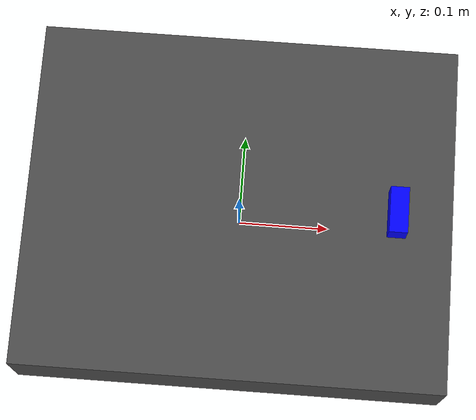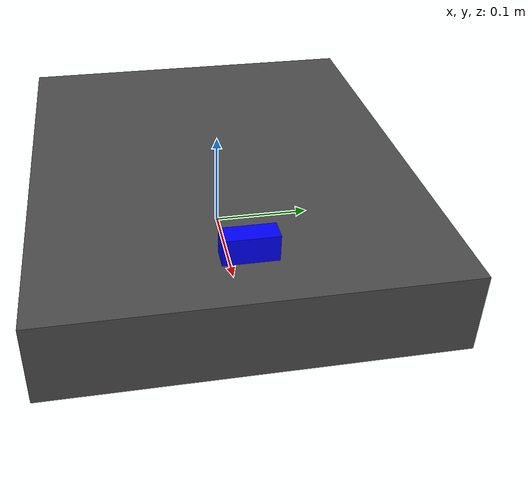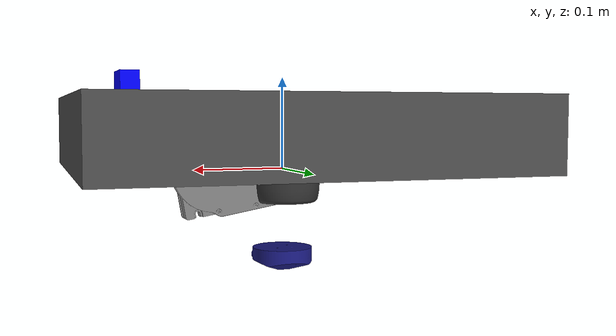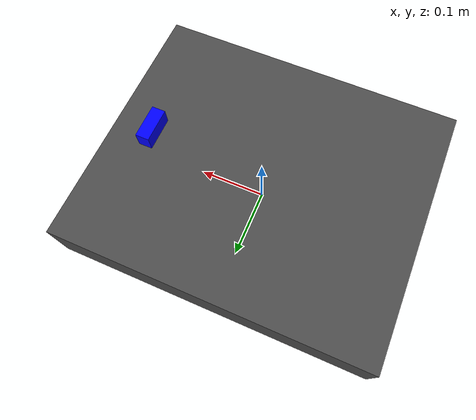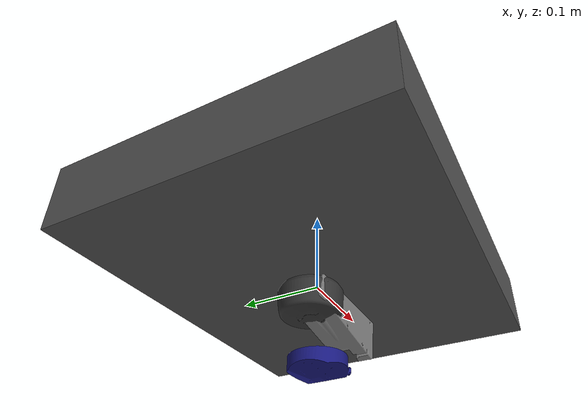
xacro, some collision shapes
<?xml version="1.0"?>
<robot name="BlueROV2_Realistic" xmlns:xacro="http://www.ros.org/wiki/xacro" xmlns:gz="http://gazebosim.org/schema">

    <xacro:property name="PI" value="3.1415926535897931"/>

    <!-- Base link -->
    <link name="base_link">
        <visual>
            <origin xyz="0 0 0" rpy="0 0 0"/>
            <geometry>
                <mesh filename="file://$(find AUV_description)/meshes/bluerov2/bluerov2_heavy.dae"/>
            </geometry>
        </visual>

        <!-- Simplified collision based on the original box 0.46 x 0.38 x 0.0809 -->
        <collision>
            <origin xyz="0 0 0.04" rpy="0 0 0"/>
            <geometry>
                <box size="0.46 0.38 0.08"/>
            </geometry>
        </collision>

        <inertial>
            <origin xyz="0 0 -0.1" rpy="0 0 0"/>
            <mass value="12.5"/>
            <inertia ixx="0.5" ixy="0" ixz="0" iyy="0.57" iyz="0" izz="0.37"/>
        </inertial>
    </link>

    <gazebo reference="base_link">
        <material>Gazebo/DarkGrey</material>
    </gazebo>

    <!-- Wave-specific Hydrodynamics Plugin -->
    <gazebo>
        <plugin filename="gz-waves1-hydrodynamics-system" name="gz::sim::systems::WavesHydrodynamics">
          <enable>base_link</enable>
          <hydrodynamics>
            <damping_on>1</damping_on>
            <viscous_drag_on>1</viscous_drag_on>
            <pressure_drag_on>1</pressure_drag_on>
          </hydrodynamics>
        </plugin>
    </gazebo>

    <xacro:macro name="add_thruster" params="prefix x y z rpy axis_xyz thrust_coeff">
        <link name="${prefix}_propeller_link">
            <!-- No visual to prevent Gazebo auto-generating collision meshes that overlap base_link -->
            <inertial>
                <!-- Give it reasonable mass and inertia to prevent Dart constraint explosion -->
                <mass value="0.1"/>
                <inertia ixx="0.01" ixy="0" ixz="0" iyy="0.01" iyz="0" izz="0.01"/>
            </inertial>
        </link>

        <joint name="${prefix}_joint" type="continuous">
            <parent link="base_link"/>
            <child link="${prefix}_propeller_link"/>
            <origin xyz="${x} ${y} ${z}" rpy="${rpy}"/>
            <axis xyz="${axis_xyz}"/>
            <dynamics damping="1.0" friction="1.0"/>
            <limit effort="100" velocity="500"/>
        </joint>

        <gazebo>
            <plugin filename="gz-sim-thruster-system" name="gz::sim::systems::Thruster">
                <joint_name>${prefix}_joint</joint_name>
                <thrust_coefficient>${thrust_coeff}</thrust_coefficient>
                <!-- Use 997 to match Bassin_ntnu and prevent scaling bugs -->
                <fluid_density>997</fluid_density>
                <propeller_diameter>0.08</propeller_diameter>
                <max_thrust_cmd>50</max_thrust_cmd>
            </plugin>
        </gazebo>
        <gazebo reference="${prefix}_propeller_link">
            <material>Gazebo/Black</material>
            <buoyancy><enable>false</enable></buoyancy>
        </gazebo>
    </xacro:macro>

    <xacro:add_thruster prefix="thruster_1" x="0.135" y="-0.11" z="0.0" rpy="0 -1.5708 0.7854" axis_xyz="0 0 1" thrust_coeff="-0.02"/>
    <xacro:add_thruster prefix="thruster_2" x="0.135" y="0.11" z="0.0" rpy="0 1.5708 -0.7854" axis_xyz="0 0 1" thrust_coeff="0.02"/>
    <xacro:add_thruster prefix="thruster_3" x="-0.135" y="-0.11" z="0.0" rpy="0 1.5708 2.3562" axis_xyz="0 0 1" thrust_coeff="-0.02"/>
    <xacro:add_thruster prefix="thruster_4" x="-0.135" y="0.11" z="0.0" rpy="0 -1.5708 -2.3562" axis_xyz="0 0 1" thrust_coeff="0.02"/>
        <!-- Propulseurs verticaux configuration Heavy (8 thrusters) -->
    <xacro:add_thruster prefix="thruster_5" x="0.12" y="-0.218" z="0.0" rpy="0 0 0" axis_xyz="0 0 1" thrust_coeff="-0.02"/>
    <xacro:add_thruster prefix="thruster_6" x="0.12" y="0.218" z="0.0" rpy="0 0 0" axis_xyz="0 0 1" thrust_coeff="0.02"/>
    <xacro:add_thruster prefix="thruster_7" x="-0.12" y="-0.218" z="0.0" rpy="0 0 0" axis_xyz="0 0 1" thrust_coeff="0.02"/>
    <xacro:add_thruster prefix="thruster_8" x="-0.12" y="0.218" z="0.0" rpy="0 0 0" axis_xyz="0 0 1" thrust_coeff="-0.02"/>

    <!-- ===================== SENSORS ===================== -->

    <!-- Camera sensor (front) -->
    <link name="camera_link">
        <visual>
            <geometry><box size="0.02 0.05 0.05"/></geometry>
            <material name="blue">
                <color rgba="0 0 1 1"/>
            </material>
        </visual>
        <inertial>
            <mass value="0.01"/>
            <origin xyz="0 0 0" rpy="0 0 0"/>
            <inertia ixx="0.0001" ixy="0" ixz="0" iyy="0.0001" iyz="0" izz="0.0001"/>
        </inertial>
    </link>
    <joint name="camera_joint" type="fixed">
        <parent link="base_link"/>
        <child link="camera_link"/>
        <!-- Front panel — z=0.08 puts camera in upper body, above the frame rails -->
        <origin xyz="0.17 0 0.08" rpy="0 0 0"/>
    </joint>

    <gazebo reference="camera_link">
        <material>Gazebo/Blue</material>
        <sensor name="camera" type="camera">
            <camera>
                <horizontal_fov>1.047</horizontal_fov>
                <image>
                    <width>640</width>
                    <height>480</height>
                </image>
            </camera>
            <always_on>1</always_on>
            <update_rate>30</update_rate>
            <topic>camera/image_raw</topic>
        </sensor>
    </gazebo>

    <!-- Ping360 sonar (top) — mesh model -->
    <!-- Mesh native dims: X=77mm, Y=83mm, Z=89mm, corner at origin -->
    <!-- Visual offset centers the mesh on its geometric midpoint            -->
    <link name="ping360_link">
        <visual>
            <!-- Center: -38.5mm X, -41.5mm Y, -44.6mm Z -->
            <!-- rpy: -90° around X corrects Y-up export → mesh stands upright -->
            <origin xyz="-0.0385 -0.0415 -0.0446" rpy="-1.5708 0 0"/>
            <geometry>
                <mesh filename="file://$(find AUV_description)/meshes/bluerov2/PING360.STL" scale="0.001 0.001 0.001"/>
            </geometry>
            <material name="dark_grey">
                <color rgba="0.2 0.2 0.2 1"/>
            </material>
        </visual>
        <inertial>
            <mass value="0.1"/>
            <origin xyz="0 0 0" rpy="0 0 0"/>
            <inertia ixx="0.0001" ixy="0" ixz="0" iyy="0.0001" iyz="0" izz="0.0001"/>
        </inertial>
    </link>
    <joint name="ping360_joint" type="fixed">
        <parent link="base_link"/>
        <child link="ping360_link"/>
        <!-- Centered on top of the robot body, base of mesh at z~0.045m above joint -->
        <origin xyz="0.0 0.0 0.09" rpy="0 0 0"/>
    </joint>

    <gazebo reference="ping360_link">
        <sensor name="ping360_sonar" type="gpu_lidar">
            <update_rate>10</update_rate>
            <topic>ping360/scan</topic>
            <gz:frame_id>ping360_link</gz:frame_id>
            <lidar>
                <scan>
                    <horizontal>
                        <samples>360</samples>
                        <resolution>1</resolution>
                        <min_angle>-3.14159</min_angle>
                        <max_angle>3.14159</max_angle>
                    </horizontal>
                    <vertical>
                        <samples>1</samples>
                        <resolution>1</resolution>
                        <min_angle>0</min_angle>
                        <max_angle>0</max_angle>
                    </vertical>
                </scan>
                <range>
                    <min>0.75</min>
                    <max>50.0</max>
                    <resolution>0.01</resolution>
                </range>
                <noise>
                    <type>gaussian</type>
                    <mean>0.0</mean>
                    <stddev>0.02</stddev>
                </noise>
            </lidar>
            <always_on>1</always_on>
            <visualize>true</visualize>
        </sensor>
    </gazebo>

    <!-- IMU sensor -->
    <link name="imu_link">
        <visual>
            <geometry>
                <box size="0.02 0.02 0.02"/>
            </geometry>
            <material name="orange">
                <color rgba="1 0.5 0 1"/>
            </material>
        </visual>
        <inertial>
            <mass value="0.01"/>
            <origin xyz="0 0 0" rpy="0 0 0"/>
            <inertia ixx="0.0001" ixy="0" ixz="0" iyy="0.0001" iyz="0" izz="0.0001"/>
        </inertial>
    </link>
    <joint name="imu_joint" type="fixed">
        <parent link="base_link"/>
        <child link="imu_link"/>
        <origin xyz="0 0 0" rpy="0 0 0"/>
    </joint>

    <gazebo reference="imu_link">
        <material>Gazebo/Orange</material>
        <sensor name="imu_sensor" type="imu">
            <always_on>1</always_on>
            <update_rate>50</update_rate>
            <topic>imu</topic>
            <gz:frame_id>imu_link</gz:frame_id>
            <imu>
                <angular_velocity>
                    <x>
                        <noise type="gaussian">
                            <mean>0.0</mean><stddev>2e-4</stddev>
                            <bias_mean>0.0000075</bias_mean><bias_stddev>0.0000008</bias_stddev>
                        </noise>
                    </x>
                    <y>
                        <noise type="gaussian">
                            <mean>0.0</mean><stddev>2e-4</stddev>
                            <bias_mean>0.0000075</bias_mean><bias_stddev>0.0000008</bias_stddev>
                        </noise>
                    </y>
                    <z>
                        <noise type="gaussian">
                            <mean>0.0</mean><stddev>2e-4</stddev>
                            <bias_mean>0.0000075</bias_mean><bias_stddev>0.0000008</bias_stddev>
                        </noise>
                    </z>
                </angular_velocity>
                <linear_acceleration>
                    <x>
                        <noise type="gaussian">
                            <mean>0.0</mean><stddev>1.7e-2</stddev>
                            <bias_mean>0.02</bias_mean><bias_stddev>0.001</bias_stddev>
                        </noise>
                    </x>
                    <y>
                        <noise type="gaussian">
                            <mean>0.0</mean><stddev>1.7e-2</stddev>
                            <bias_mean>0.02</bias_mean><bias_stddev>0.001</bias_stddev>
                        </noise>
                    </y>
                    <z>
                        <noise type="gaussian">
                            <mean>0.0</mean><stddev>1.7e-2</stddev>
                            <bias_mean>0.02</bias_mean><bias_stddev>0.001</bias_stddev>
                        </noise>
                    </z>
                </linear_acceleration>
            </imu>
        </sensor>
    </gazebo>

    <!-- DVL A50 — mesh model (bottom-facing) -->
    <!-- Mesh dims: X=66mm, Y=25mm(thickness), Z=66mm — flat square disc -->
    <link name="dvl_link">
        <visual>
            <!-- Center mesh on its bbox midpoint: X/2=33mm, Y/2=12.5mm, Z/2=33mm -->
            <origin xyz="-0.033 -0.0125 -0.033" rpy="0 0 0"/>
            <geometry>
                <mesh filename="file://$(find AUV_description)/meshes/bluerov2/dvl_a50.STL" scale="0.001 0.001 0.001"/>
            </geometry>
            <material name="dark_blue">
                <color rgba="0.1 0.1 0.5 1"/>
            </material>
        </visual>
        <inertial>
            <mass value="0.3"/>
            <origin xyz="0 0 0" rpy="0 0 0"/>
            <inertia ixx="0.0001" ixy="0" ixz="0" iyy="0.0001" iyz="0" izz="0.0001"/>
        </inertial>
    </link>
    <joint name="dvl_joint" type="fixed">
        <parent link="base_link"/>
        <child link="dvl_link"/>
        <!-- -π/2 around X: maps face (+Y) to point downward (-Z)  -->
        <!-- z=-0.10: just below the chassis, closer to robot body  -->
        <origin xyz="0 0 -0.10" rpy="-1.5708 0 0"/>
    </joint>

    <gazebo reference="base_link">
        <sensor name="dvl_sensor" type="custom" gz:type="dvl">
            <always_on>1</always_on>
            <update_rate>15</update_rate>
            <topic>/dvl/velocity</topic>
            <gz:frame_id>base_link</gz:frame_id>
            <gz:dvl>
                <type>phased_array</type>
                <arrangement degrees="true">
                    <beam id="1">
                        <aperture>2.0</aperture>
                        <rotation>45</rotation>
                        <tilt>22.5</tilt>
                    </beam>
                    <beam id="2">
                        <aperture>2.0</aperture>
                        <rotation>135</rotation>
                        <tilt>22.5</tilt>
                    </beam>
                    <beam id="3">
                        <aperture>2.0</aperture>
                        <rotation>225</rotation>
                        <tilt>22.5</tilt>
                    </beam>
                    <beam id="4">
                        <aperture>2.0</aperture>
                        <rotation>315</rotation>
                        <tilt>22.5</tilt>
                    </beam>
                </arrangement>
                <tracking>
                    <bottom_mode>
                        <when>best</when>
                        <noise type="gaussian">
                            <stddev>0.01</stddev>
                        </noise>
                        <visualize>true</visualize>
                    </bottom_mode>
                </tracking>
            </gz:dvl>
        </sensor>
    </gazebo>

    <!-- Sonoptix ECHO sonar (forward-facing) — mesh model -->
    <!-- Mesh native dims: X=100mm, Y=42mm, Z=150mm, corner at origin -->
    <!-- Rotation -90° around Y maps Z-axis (150mm length) onto +X (forward).    -->
    <!-- Visual offset centers the mesh at its geometric midpoint.                -->
    <link name="sonoptix_link">
        <visual>
            <!-- Center mesh: -50mm X, -21mm Y, -75mm Z (in mesh frame after rotation) -->
            <origin xyz="-0.075 -0.021 -0.05" rpy="0 -1.5708 0"/>
            <geometry>
                <mesh filename="file://$(find AUV_description)/meshes/bluerov2/ECHO.STL" scale="0.001 0.001 0.001"/>
            </geometry>
            <material name="grey">
                <color rgba="0.5 0.5 0.5 1"/>
            </material>
        </visual>
        <inertial>
            <mass value="0.2"/>
            <origin xyz="0 0 0" rpy="0 0 0"/>
            <inertia ixx="0.0001" ixy="0" ixz="0" iyy="0.0001" iyz="0" izz="0.0001"/>
        </inertial>
    </link>
    <joint name="sonoptix_joint" type="fixed">
        <parent link="base_link"/>
        <child link="sonoptix_link"/>
        <!-- Mounted on the front of the robot, centered, slight downward tilt 10° -->
        <origin xyz="0.20 0.0 -0.02" rpy="0 0.1745 0"/>
    </joint>

    <gazebo reference="sonoptix_link">
        <material>Gazebo/Grey</material>
        <sensor name="sonoptix_sonar" type="gpu_lidar">
            <update_rate>15</update_rate>
            <topic>sonoptix</topic>
            <gz:frame_id>sonoptix_link</gz:frame_id>
            <lidar>
                <scan>
                    <horizontal>
                        <samples>256</samples>
                        <resolution>1</resolution>
                        <min_angle>-1.0472</min_angle>
                        <max_angle>1.0472</max_angle>
                    </horizontal>
                    <vertical>
                        <samples>20</samples>
                        <resolution>1</resolution>
                        <min_angle>-0.1745</min_angle>
                        <max_angle>0.1745</max_angle>
                    </vertical>
                </scan>
                <range>
                    <min>0.5</min>
                    <max>100.0</max>
                    <resolution>0.01</resolution>
                </range>
                <noise>
                    <type>gaussian</type>
                    <mean>0.0</mean>
                    <stddev>0.03</stddev>
                </noise>
            </lidar>
            <always_on>1</always_on>
            <visualize>true</visualize>
        </sensor>
    </gazebo>

    <!-- ===================== PLUGINS ===================== -->

    <!-- Optional Odometry and IMU Plugin -->
    <gazebo>
        <plugin filename="gz-sim-odometry-publisher-system" name="gz::sim::systems::OdometryPublisher">
            <odom_frame>odom</odom_frame>
            <robot_base_frame>base_link</robot_base_frame>
            <odom_publish_frequency>30</odom_publish_frequency>
            <publish_tf>true</publish_tf>
            <dimensions>3</dimensions>
        </plugin>
        <plugin filename="gz-sim-imu-system" name="gz::sim::systems::Imu"/>
    </gazebo>

</robot>
